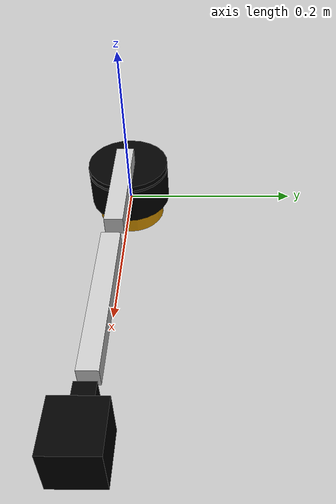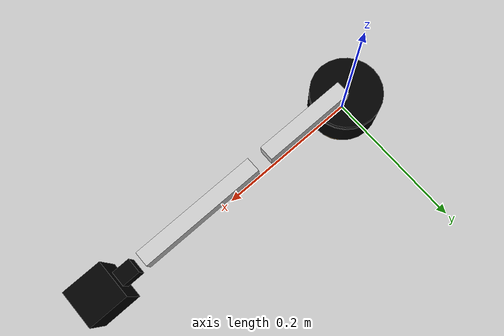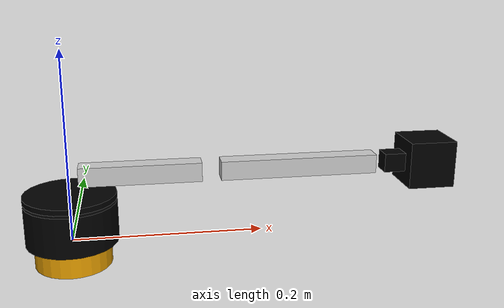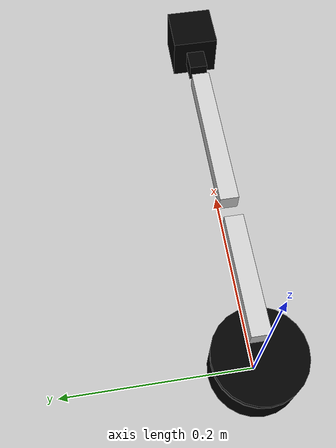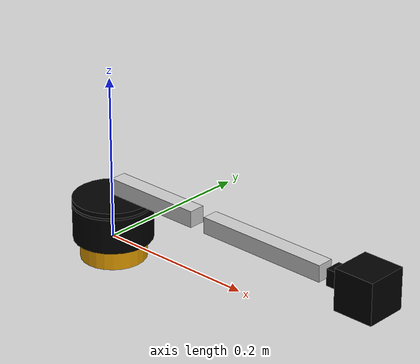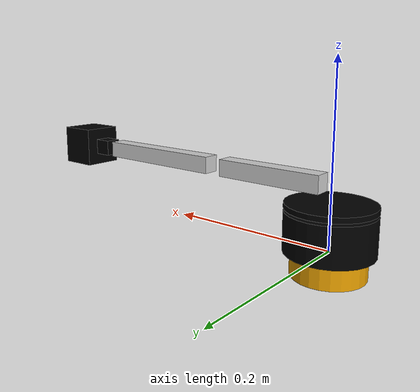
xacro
<?xml version="1.0" ?>
<robot xmlns:xacro="http://ros.org/wiki/xacro" name="lynxmotion_al5d">
  <link name="base_link">
    <inertial>
      <mass value="1"/>
      <origin xyz="0 0 0" rpy="0 0 0"/>
      <inertia ixx="0.0027" ixy="0" ixz="0" iyy="0.0027" iyz="0" izz="0.005" />
    </inertial>
    <collision name="collision">
        <origin xyz="0 0 0" rpy="0 0 0"/>
        <geometry>
          <cylinder length="0.005" radius="0.04"/>
        </geometry>
          <contact_coefficients>
              <mu1>0</mu1>
              <mu2>0</mu2>
          </contact_coefficients>
      </collision>
      <visual name="visual">
        <origin xyz="0 0 0" rpy="0 0 0"/>
        <geometry>
          <cylinder length="0.05" radius="0.04"/>
        </geometry>
      </visual>
  </link>

  <xacro:include filename="$(find arm_description)/models/al5d_macro.urdf.xacro"/>
  <lynxmotion_al5d prefix="al5d_" parent_link="base_link">
    <origin xyz="0 0 0"/>
  </lynxmotion_al5d>
</robot>

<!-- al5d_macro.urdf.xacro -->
<robot xmlns:xacro="http://ros.org/wiki/xacro">

  <xacro:property name="M_PI" value="3.14159"/>

  <xacro:property name="base_height" value="0.043" />
  <xacro:property name="base_radius" value="0.048" />
  <xacro:property name="link1_height" value="0.006" />
  <xacro:property name="link1_radius" value="0.048" />
  <xacro:property name="link2_offset" value="0.022" />
  <xacro:property name="link2_length" value="0.14605" />
  <xacro:property name="link3_length" value="0.187325" />
  <xacro:property name="link4_length" value="0.032" />
  <xacro:property name="gripper_offset" value="0.016" />

  <xacro:macro name="lynxmotion_al5d" params="prefix parent_link rate:=50 *origin">
    <!-- attach -->
    <joint name="arm_base_joint" type="fixed">
      <xacro:insert_block name="origin" />
      <parent link="${parent_link}"/>
      <child link="${prefix}base_link" />
    </joint>
    <!-- links -->
    <link name="${prefix}base_link">
      <visual>
        <origin xyz="0 0 ${base_height/2}" rpy="0 0 0"/>
        <geometry>
          <cylinder length="${base_height}" radius="${base_radius}"/>
        </geometry>
        <material name="black">
          <color rgba="0 0 0 1"/>
        </material>
      </visual>
      <inertial>
        <mass value="1"/>
        <origin xyz="0 0 0" rpy="0 0 0"/>
        <inertia ixx="0.0027" ixy="0" ixz="0" iyy="0.0027" iyz="0" izz="0.005" />
      </inertial>
      <collision>
        <origin xyz="0 0 ${base_height/2}" rpy="0 0 0"/>
        <geometry>
          <cylinder length="${base_height}" radius="${link1_radius}"/>
        </geometry>
      </collision>
    </link>
    <link name="${prefix}link_1">
      <visual>
        <origin xyz="0 0 0" rpy="0 0 0"/>
        <geometry>
          <cylinder length="${link1_height}" radius="${link1_radius}"/>
        </geometry>
        <material name="black">
          <color rgba="0 0 0 1"/>
        </material>
      </visual>
      <inertial>
        <mass value="1"/>
        <origin xyz="0 0 0" rpy="0 0 0"/>
        <inertia ixx="0.0027" ixy="0" ixz="0" iyy="0.0027" iyz="0" izz="0.005" />
      </inertial>
      <collision>
        <origin xyz="0 0 0" rpy="0 0 0"/>
        <geometry>
           <cylinder length="${link1_height}" radius="${base_radius}"/>
        </geometry>
      </collision>
    </link>
    <link name="${prefix}link_2">
      <visual>
        <origin xyz="${link2_length/2} 0 0" rpy="0 0 0"/>
        <geometry>
          <box size="${link2_length-0.02} 0.02 .02"/>
        </geometry>
        <material name="silver">
          <color rgba="0.8 0.8 0.8 1"/>
        </material>
      </visual>
      <inertial>
        <mass value="1"/>
        <origin xyz="0 0 0" rpy="0 0 0"/>
        <inertia ixx="0.0027" ixy="0" ixz="0" iyy="0.0027" iyz="0" izz="0.005" />
      </inertial>
      <collision>
        <origin xyz="${link2_length/2} 0 0" rpy="0 0 0"/>
        <geometry>
          <box size="${link2_length-0.02} 0.02 .02"/>
        </geometry>
      </collision>
    </link>
    <link name="${prefix}link_3">
      <visual>
        <origin xyz="${link3_length/2} 0 0" rpy="0 0 0"/>
        <geometry>
          <box size="${link3_length-0.02} 0.02 0.02"/>
        </geometry>
        <material name="silver">
          <color rgba="0.8 0.8 0.8 1"/>
        </material>
      </visual>
      <inertial>
        <mass value="1"/>
        <origin xyz="0 0 0" rpy="0 0 0"/>
        <inertia ixx="0.0027" ixy="0" ixz="0" iyy="0.0027" iyz="0" izz="0.005" />
      </inertial>
      <collision>
        <origin xyz="${link3_length/2} 0 0" rpy="0 0 0"/>
        <geometry>
          <box size="${link3_length} 0.02 0.02"/>
        </geometry>
      </collision>
    </link>
    <link name="${prefix}link_4">
      <visual>
        <origin xyz="${link4_length/2} 0 0" rpy="0 0 0"/>
        <geometry>
          <box size="${link4_length} 0.02 0.02"/>
        </geometry>
        <material name="black">
          <color rgba="0 0 0 1"/>
        </material>
      </visual>
      <inertial>
        <mass value="1"/>
        <origin xyz="0 0 0" rpy="0 0 0"/>
        <inertia ixx="0.0027" ixy="0" ixz="0" iyy="0.0027" iyz="0" izz="0.005" />
      </inertial>
      <collision>
        <origin xyz="${link4_length/2} 0 0" rpy="0 0 0"/>
        <geometry>
          <box size="${link4_length} 0.02 0.02"/>
        </geometry>
      </collision>
    </link>
    <link name="${prefix}gripper">
      <visual>
        <origin xyz="0 0 0" rpy="0 0 0"/>
        <geometry>
          <box size="0.05 0.05 0.05"/>
        </geometry>
        <material name="black">
          <color rgba="0 0 0 1"/>
        </material>
      </visual>
      <inertial>
        <mass value="1"/>
        <origin xyz="0 0 0" rpy="0 0 0"/>
        <inertia ixx="0.0027" ixy="0" ixz="0" iyy="0.0027" iyz="0" izz="0.005" />
      </inertial>
      <collision>
        <origin xyz="0 0 0.025" rpy="0 0 0"/>
        <geometry>
          <box size="0.05 0.05 0.05"/>
        </geometry>
      </collision>
    </link>

    <!-- joints -->
    <joint name="${prefix}joint_1" type="revolute">
      <origin xyz="0 0 ${base_height + link1_height}" rpy="0 0 0"/>
      <parent link="${prefix}base_link"/>
      <child link="${prefix}link_1"/>
      <axis xyz="0 0 1"/>
      <limit lower="-${M_PI/2}" upper="${M_PI/2}" effort="0" velocity="3.67"/>
    </joint>
    <joint name="${prefix}joint_2" type="revolute">
      <origin xyz="0 0 ${link2_offset}" rpy="${M_PI/2} 0 0"/>
      <parent link="${prefix}link_1"/>
      <child link="${prefix}link_2"/>
      <axis xyz="0 0 1"/>
      <limit lower="-${M_PI/2}" upper="${M_PI/2}" effort="0" velocity="3.32"/>
    </joint>
    <joint name="${prefix}joint_3" type="revolute">
      <origin xyz="${link2_length} 0 0" rpy="0 0 0" />
      <parent link="${prefix}link_2"/>
      <child link="${prefix}link_3"/>
      <axis xyz="0 0 1"/>
      <limit lower="-${M_PI/2}" upper="${M_PI/2}" effort="0" velocity="3.67"/>
    </joint>
    <joint name="${prefix}joint_4" type="revolute">
      <origin xyz="${link3_length} 0 0" rpy="0 0 0"/>
      <parent link="${prefix}link_3"/>
      <child link="${prefix}link_4"/>
      <axis xyz="0 0 1"/>
      <limit lower="-${M_PI/2}" upper="${M_PI/2}" effort="0" velocity="6.98"/>
    </joint>
    <joint name="${prefix}gripper" type="revolute">
      <origin xyz="${link4_length + gripper_offset} 0 0" rpy="0 0 0"/>
      <parent link="${prefix}link_4"/>
      <child link="${prefix}gripper"/>
      <axis xyz="1 0 0"/>
      <limit lower="-${M_PI/2}" upper="${M_PI/2}" effort="0" velocity="6.98"/>
    </joint>

    <transmission name="${prefix}joint_1">
      <type>transmission_interface/SimpleTransmission</type>
      <joint name="${prefix}joint_1">
        <hardwareInterface>hardware_interface/PositionJointInterface</hardwareInterface>
      </joint>
      <actuator name="motor1">
        <hardwareInterface>hardware_interface/PositionJointInterface</hardwareInterface>
        <mechanicalReduction>1</mechanicalReduction>
      </actuator>
    </transmission>
    <transmission name="${prefix}joint_2">
      <type>transmission_interface/SimpleTransmission</type>
      <joint name="${prefix}joint_2">
        <hardwareInterface>hardware_interface/PositionJointInterface</hardwareInterface>
      </joint>
      <actuator name="motor2">
        <hardwareInterface>hardware_interface/PositionJointInterface</hardwareInterface>
        <mechanicalReduction>1</mechanicalReduction>
      </actuator>
    </transmission>
    <transmission name="${prefix}joint_3">
      <type>transmission_interface/SimpleTransmission</type>
      <joint name="${prefix}joint_3">
        <hardwareInterface>hardware_interface/PositionJointInterface</hardwareInterface>
      </joint>
      <actuator name="motor3">
        <hardwareInterface>hardware_interface/PositionJointInterface</hardwareInterface>
        <mechanicalReduction>1</mechanicalReduction>
      </actuator>
    </transmission>
    <transmission name="${prefix}joint_4">
      <type>transmission_interface/SimpleTransmission</type>
      <joint name="${prefix}joint_4">
        <hardwareInterface>hardware_interface/PositionJointInterface</hardwareInterface>
      </joint>
      <actuator name="motor4">
        <hardwareInterface>hardware_interface/PositionJointInterface</hardwareInterface>
        <mechanicalReduction>1</mechanicalReduction>
      </actuator>
    </transmission>
    <transmission name="${prefix}gripper">
      <type>transmission_interface/SimpleTransmission</type>
      <joint name="${prefix}gripper">
        <hardwareInterface>hardware_interface/PositionJointInterface</hardwareInterface>
      </joint>
      <actuator name="motor5">
        <hardwareInterface>hardware_interface/PositionJointInterface</hardwareInterface>
        <mechanicalReduction>1</mechanicalReduction>
      </actuator>
    </transmission>
    <gazebo>
      <plugin name="control" filename="libgazebo_ros_control.so"/>
      <plugin name="joint_state_publisher" filename="libgazebo_ros_joint_state_publisher.so">
        <jointName>${prefix}joint_1, ${prefix}joint_2, ${prefix}joint_3, ${prefix}joint_4, ${prefix}gripper</jointName>
        <updateRate>${rate}</updateRate>
      </plugin>
    </gazebo>
  </xacro:macro>
</robot>
